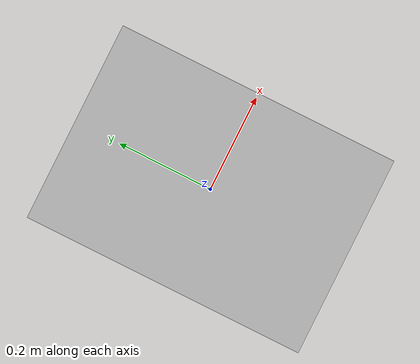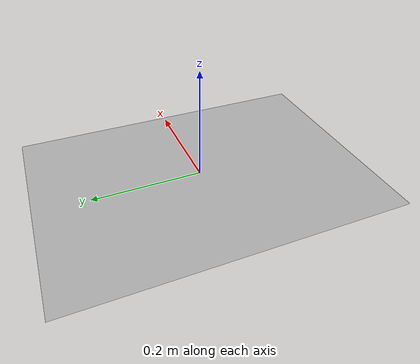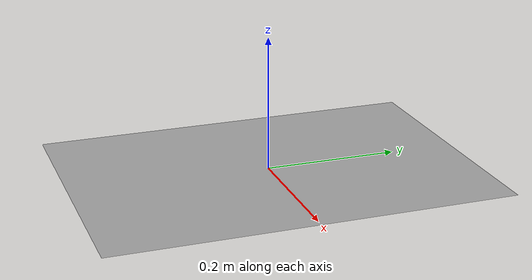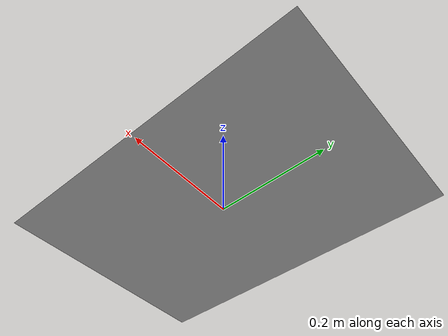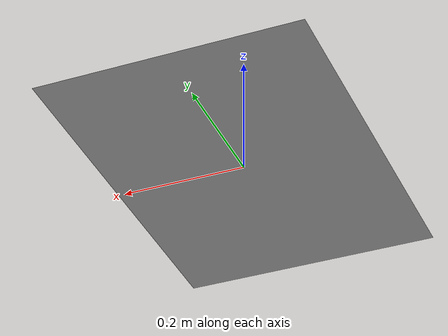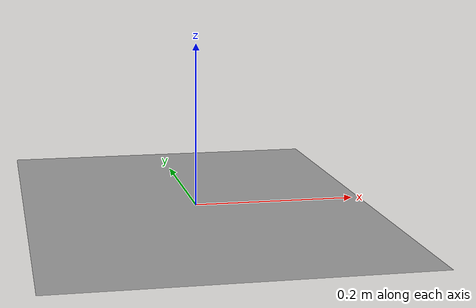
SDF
<?xml version='1.0'?>
<sdf version="1.6">
    <model name="calibration_plane">
        <static>true</static>
        <link name="link">
            <visual name="visual">
                <geometry>
                    <mesh>
                        <uri>model://calibration_plane2/meshes/calibration_plane.dae</uri>
                    </mesh>
                </geometry>
            </visual>
        </link>
    </model>
</sdf>
